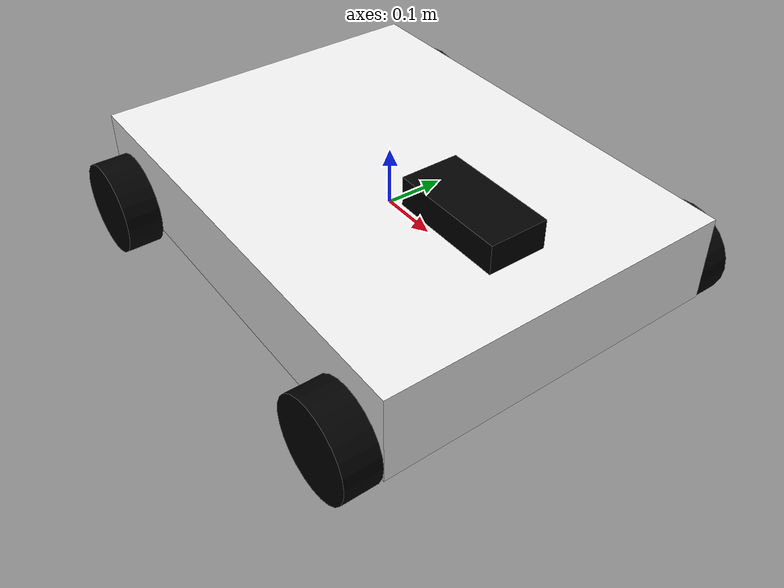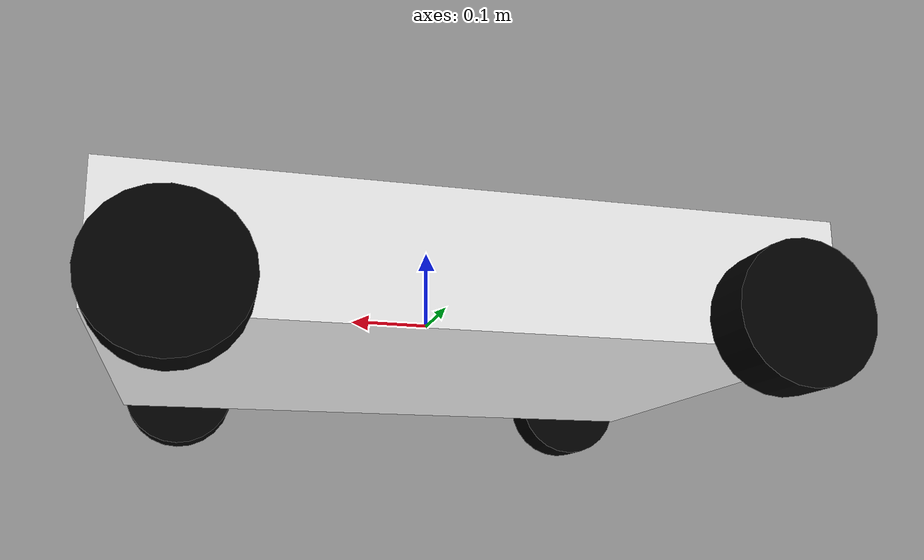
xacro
<?xml version="1.0"?>
<robot xmlns:xacro="http://www.ros.org/wiki/xacro" name="mobile_robot">

<!-- Base Link -->
<link name="base_link">
</link>

<xacro:property name="height" value="0.8" />
<xacro:property name="width" value="0.6" />
<xacro:property name="depth" value="0.15" />

<!--Chassis-->
<link name="chassis">
  <visual>
    <geometry>
      <box size="${height} ${width} ${depth}"/>
    </geometry>
  </visual>
  <collision>
    <geometry>
      <box size="${height} ${width} ${depth}"/>
    </geometry>
  </collision>
  <inertial>
    <mass value="1.0"/> <!-- [kg] -->
    <inertia ixx="0.014167" ixy="0.0" ixz="0.0" iyy="0.026667" iyz="0.0" izz="0.014167"/>
  </inertial>
</link>

<gazebo reference="chassis">
  <material>Gazebo/White</material>
</gazebo>

<joint name="chassis_joint" type="fixed">
  <parent link="base_link"/>
  <child link="chassis"/>
</joint>

<material name="white">
    <color rgba="1 1 1 1"/>
</material>
<material name="black">
    <color rgba="0 0 0 1"/>
</material>

<xacro:property name="wheel_height" value="0.06" />
<xacro:property name="wheel_radius" value="0.08" />

<!-- Wheel macro-->
<xacro:macro name="wheel" params="name reflect_x reflect_y reflect_r reflect_axis">

  <!-- Wheel link -->
	<link name="${name}_wheel">
    <visual>
      <geometry>
        <cylinder length="${wheel_height}" radius="${wheel_radius}"/>
      </geometry>
      <material name="black"/>
    </visual>
    <collision>
      <geometry>
        <cylinder length="${wheel_height}" radius="${wheel_radius}"/>
      </geometry>
    </collision>
    <inertial>
      <mass value="0.3"/>  <!-- [kg] -->
      <inertia ixx="0.00031" ixy="0.0" ixz="0.0" iyy="0.00031" iyz="0.0" izz="0.00054"/>
    </inertial>
  </link>

  <!-- Wheel joint -->
  <joint name="${name}_wheel_joint" type="continuous">
    <parent link="chassis"/>
    <child link="${name}_wheel"/>
    <origin xyz="${(reflect_x*height/2)-(reflect_x*wheel_radius)} ${reflect_y*(width/2+0.03)} -0.05" rpy="${reflect_r*1.5707} 0 0"/>
    <axis xyz="0 0 ${reflect_axis}"/>
  </joint>

  <!-- Adding transmission to wheels -->
  <transmission name="${name}_wheel_trans">
    <type>transmission_interface/SimpleTransmission</type>
    <actuator name="${name}_wheel_motor">
      <mechanicalReduction>1</mechanicalReduction>
    </actuator>
    <joint name="${name}_wheel_joint">
      <hardwareInterface>hardware_interface/VelocityJointInterface</hardwareInterface>
    </joint>
  </transmission>

  <gazebo reference="${name}_wheel">
    <material>Gazebo/Black</material>
  </gazebo>

</xacro:macro>

<!-- Wheels definition-->
<xacro:wheel name="front_right" reflect_x="1" reflect_y="-1" reflect_r="1" reflect_axis="-1"/>
<xacro:wheel name="front_left" reflect_x="1" reflect_y="1" reflect_r="-1" reflect_axis="1"/>
<xacro:wheel name="rear_right" reflect_x="-1" reflect_y="-1" reflect_r="1" reflect_axis="-1"/>
<xacro:wheel name="rear_left" reflect_x="-1" reflect_y="1" reflect_r="-1" reflect_axis="1"/>

<!-- Head box -->

<link name="head">
  <visual>
    <geometry>
      <box size="0.2 0.1 0.05"/>
    </geometry>
    <material name="black"/>
  </visual>
</link>

<joint name="head_joint" type="fixed">
  <parent link="chassis"/>
  <child link="head"/>
  <origin xyz="0.2 0 0.1" rpy="0 0 0"/>
</joint>

<gazebo reference="head">
  <material>Gazebo/Black</material>
</gazebo>

<!-- Link Gazebo and ROS -->
<gazebo>
  <plugin name="gazebo_ros_control" filename="libgazebo_ros_control.so">
    <robotNamespace>/</robotNamespace>
  </plugin>
</gazebo>

</robot>
